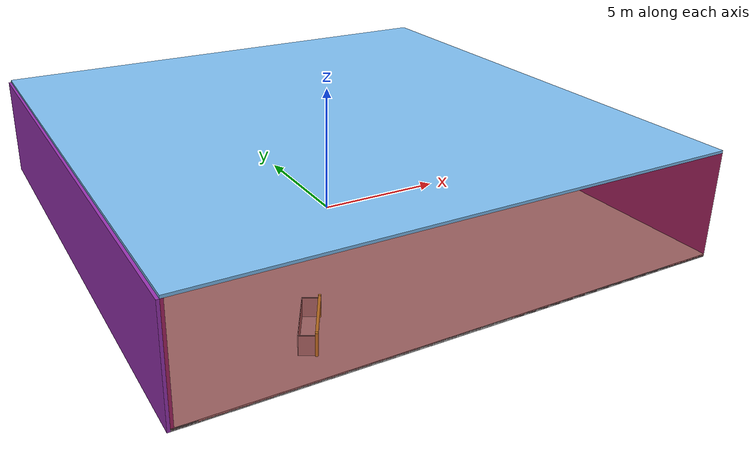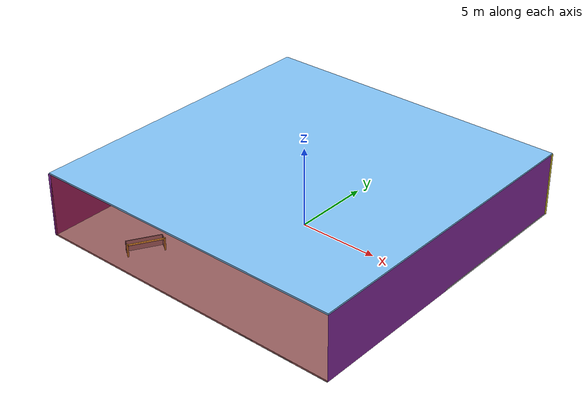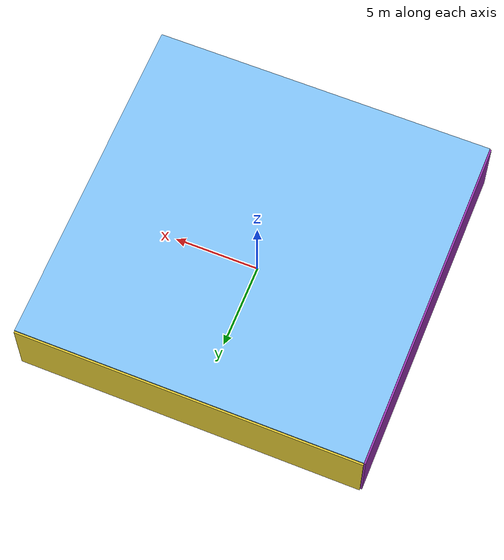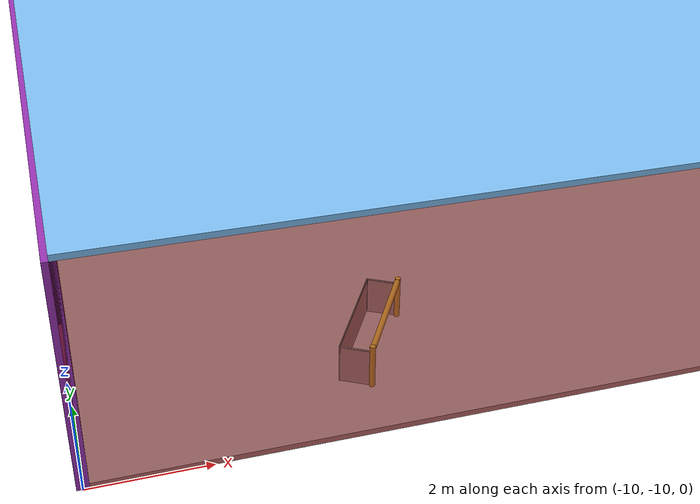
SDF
<sdf version="1.4">
 <world name="default">
  <physics type="ode">
   <max_step_size>0.001</max_step_size>
   <real_time_factor>1</real_time_factor>
   <real_time_update_rate>1000</real_time_update_rate>
   <gravity>0 0 -9.8</gravity>
  </physics>
  <scene><ambient>0.4 0.4 0.4 1</ambient><background>0.7 0.7 0.7 1</background><shadows>1</shadows></scene>
  <model name="Surrounding">
   <static>1</static>
   <link name="Ceiling">
    <collision name="Ceiling_Collision"><geometry><box><size>20 20 0.1</size></box></geometry></collision>
    <visual name="Ceiling_Visual">
     <geometry><box><size>20 20 0.1</size></box></geometry>
     <material>
      <script><uri>file://media/materials/scripts/gazebo.material</uri><name>Gazebo/SkyBlue</name></script>
     </material>
    </visual>
    <pose>0 0 4.05 0 0 0</pose>
   </link>
   <link name="Wall_South">
    <collision name="Wall_South_Collision">
     <geometry><box><size>20 0 4</size></box></geometry>
     <pose>0 0 2 0 -0 0</pose>
    </collision>
    <visual name="Wall_South_Visual">
     <pose>0 0 2 0 -0 0</pose>
     <geometry><box><size>20 0 4</size></box></geometry>
     <material>
      <script><uri>file://media/materials/scripts/gazebo.material</uri><name>Gazebo/RedTransparent</name></script>
     </material>
    </visual>
    <velocity_decay><linear>0</linear><angular>0</angular></velocity_decay>
    <pose>0 -10 0 0 -0 0</pose>
   </link>
   <link name="Wall_East">
    <collision name="Wall_21_Collision">
     <geometry><box><size>20 0 4</size></box></geometry>
     <pose>0 0 2 0 -0 0</pose>
    </collision>
    <visual name="Wall_21_Visual">
     <pose>0 0 2 0 -0 0</pose>
     <geometry><box><size>20 0 4</size></box></geometry>
     <material>
      <script><uri>file://media/materials/scripts/gazebo.material</uri><name>Gazebo/PurpleGlow</name></script>
     </material>
    </visual>
    <velocity_decay><linear>0</linear><angular>0</angular></velocity_decay>
    <pose>10 0 0 0 -0 1.5708</pose>
   </link>
   <link name="Wall_North">
    <collision name="Wall_22_Collision">
     <geometry><box><size>20 0.2 4</size></box></geometry>
     <pose>0 0 2 0 -0 0</pose>
    </collision>
    <visual name="Wall_22_Visual">
     <pose>0 0 2 0 -0 0</pose>
     <geometry><box><size>20 0.2 4</size></box></geometry>
     <material>
      <script><uri>file://media/materials/scripts/gazebo.material</uri><name>Gazebo/ZincYellow</name></script>
     </material>
    </visual>
    <velocity_decay><linear>0</linear><angular>0</angular></velocity_decay>
    <pose>0 10 0 0 -0 0</pose>
   </link>
   <link name="Wall_West">
    <collision name="Wall_23_Collision">
     <geometry><box><size>20 0.2 4</size></box></geometry>
     <pose>0 0 2 0 -0 0</pose>
    </collision>
    <visual name="Wall_23_Visual">
     <pose>0 0 2 0 -0 0</pose>
     <geometry><box><size>20 0.2 4</size></box></geometry>
     <material>
      <script><uri>file://media/materials/scripts/gazebo.material</uri><name>Gazebo/Purple</name></script>
     </material>
    </visual>
    <velocity_decay><linear>0</linear><angular>0</angular></velocity_decay>
    <pose>-10 0 0 0 0 -1.5708</pose>
   </link>
   <link name="Ground_link">
    <collision name="collision">
     <pose>0 0 .05 0 -0 0</pose>
     <geometry><box><size>20 20 0.1</size></box></geometry>
    </collision>
    <visual name="visual">
     <pose>0 0 .05 0 -0 0</pose>
     <geometry><box><size>20 20 0.1</size></box></geometry>
     <material>
      <script><uri>file://media/materials/scripts/gazebo.material</uri><name>Gazebo/LightOn</name></script>
     </material>
    </visual>
   </link>
   <static>1</static>
  </model>
  <spherical_coordinates>
   <surface_model>EARTH_WGS84</surface_model>
   <latitude_deg>0</latitude_deg>
   <longitude_deg>0</longitude_deg>
   <elevation>0</elevation>
   <heading_deg>0</heading_deg>
  </spherical_coordinates>
  <light name="lightball_0" type="diffuse">
   <diffuse>0.8 0.8 0.8 1</diffuse>
   <specular>0.2 0.2 0.2 1</specular>
   <attenuation>
    <range>100</range>
    <constant>0.7</constant>
    <linear>0.01</linear>
    <quadratic>0.001</quadratic>
   </attenuation>
   <direction>-0.5 0.1 -0.9</direction>
   <pose>1.22051505555 -8.67668088208 3.53472834885 0 0 0</pose>
  </light>
  <light name="lightball_1" type="diffuse">
   <diffuse>0.8 0.8 0.8 1</diffuse>
   <specular>0.2 0.2 0.2 1</specular>
   <attenuation>
    <range>100</range>
    <constant>0.7</constant>
    <linear>0.01</linear>
    <quadratic>0.001</quadratic>
   </attenuation>
   <direction>-0.5 0.1 -0.9</direction>
   <pose>-5.61586856457 6.56962106156 2.70346097656 0 0 0</pose>
  </light>
  <light name="lightball_2" type="diffuse">
   <diffuse>0.8 0.8 0.8 1</diffuse>
   <specular>0.2 0.2 0.2 1</specular>
   <attenuation>
    <range>100</range>
    <constant>0.7</constant>
    <linear>0.01</linear>
    <quadratic>0.001</quadratic>
   </attenuation>
   <direction>-0.5 0.1 -0.9</direction>
   <pose>-4.31896502656 -5.8122371139 3.72596495534 0 0 0</pose>
  </light>
  <light name="lightball_3" type="diffuse">
   <diffuse>0.8 0.8 0.8 1</diffuse>
   <specular>0.2 0.2 0.2 1</specular>
   <attenuation>
    <range>100</range>
    <constant>0.7</constant>
    <linear>0.01</linear>
    <quadratic>0.001</quadratic>
   </attenuation>
   <direction>-0.5 0.1 -0.9</direction>
   <pose>8.85808280715 -0.507293335868 2.46679532656 0 0 0</pose>
  </light>
  <light name="lightball_4" type="diffuse">
   <diffuse>0.8 0.8 0.8 1</diffuse>
   <specular>0.2 0.2 0.2 1</specular>
   <attenuation>
    <range>100</range>
    <constant>0.7</constant>
    <linear>0.01</linear>
    <quadratic>0.001</quadratic>
   </attenuation>
   <direction>-0.5 0.1 -0.9</direction>
   <pose>-3.87483946233 0.0970582412449 0.853635411618 0 0 0</pose>
  </light>
  <light name="lightball_5" type="diffuse">
   <diffuse>0.8 0.8 0.8 1</diffuse>
   <specular>0.2 0.2 0.2 1</specular>
   <attenuation>
    <range>100</range>
    <constant>0.7</constant>
    <linear>0.01</linear>
    <quadratic>0.001</quadratic>
   </attenuation>
   <direction>-0.5 0.1 -0.9</direction>
   <pose>-4.75257734176 -7.785250837 2.94123872927 0 0 0</pose>
  </light>
  <light name="lightball_6" type="diffuse">
   <diffuse>0.8 0.8 0.8 1</diffuse>
   <specular>0.2 0.2 0.2 1</specular>
   <attenuation>
    <range>100</range>
    <constant>0.7</constant>
    <linear>0.01</linear>
    <quadratic>0.001</quadratic>
   </attenuation>
   <direction>-0.5 0.1 -0.9</direction>
   <pose>8.13432704693 1.95959825212 1.24052671402 0 0 0</pose>
  </light>
  <light name="lightball_7" type="diffuse">
   <diffuse>0.8 0.8 0.8 1</diffuse>
   <specular>0.2 0.2 0.2 1</specular>
   <attenuation>
    <range>100</range>
    <constant>0.7</constant>
    <linear>0.01</linear>
    <quadratic>0.001</quadratic>
   </attenuation>
   <direction>-0.5 0.1 -0.9</direction>
   <pose>-0.618107646937 8.36987747046 2.56500121652 0 0 0</pose>
  </light>
  <light name="lightball_8" type="diffuse">
   <diffuse>0.8 0.8 0.8 1</diffuse>
   <specular>0.2 0.2 0.2 1</specular>
   <attenuation>
    <range>100</range>
    <constant>0.7</constant>
    <linear>0.01</linear>
    <quadratic>0.001</quadratic>
   </attenuation>
   <direction>-0.5 0.1 -0.9</direction>
   <pose>-7.05350979736 -1.74519496807 1.45345647958 0 0 0</pose>
  </light>
  <light name="lightball_9" type="diffuse">
   <diffuse>0.8 0.8 0.8 1</diffuse>
   <specular>0.2 0.2 0.2 1</specular>
   <attenuation>
    <range>100</range>
    <constant>0.7</constant>
    <linear>0.01</linear>
    <quadratic>0.001</quadratic>
   </attenuation>
   <direction>-0.5 0.1 -0.9</direction>
   <pose>1.75914572038 5.52765451997 1.22231593751 0 0 0</pose>
  </light>
  <light name="lightball_10" type="diffuse">
   <diffuse>0.8 0.8 0.8 1</diffuse>
   <specular>0.2 0.2 0.2 1</specular>
   <attenuation>
    <range>100</range>
    <constant>0.7</constant>
    <linear>0.01</linear>
    <quadratic>0.001</quadratic>
   </attenuation>
   <direction>-0.5 0.1 -0.9</direction>
   <pose>9.10323380481 -0.78213733109 2.88969827545 0 0 0</pose>
  </light>
  <include>
   <uri>model://robocup_3Dsim_goal</uri>
   <pose>-4.62571209028 -8.03263296913 0 0 0 2.61541551414</pose>
  </include>
  <include>
   <uri>model://construction_cone</uri>
   <pose>3.91924548351 7.66281416949 0 0 0 2.64167505474</pose>
  </include>
 </world>
</sdf>

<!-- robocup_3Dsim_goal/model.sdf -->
<sdf version="1.5">
  <model name="robocup_3d_goal">
    <static>true</static>
    <link name="left_post">
      <pose>0 1.05 0.45 0 0 0</pose>
      <collision name="collision">
        <geometry>
          <cylinder>
            <radius>0.05</radius>
            <length>0.9</length>
          </cylinder>
        </geometry>
      </collision>
      <visual name="visual">
        <geometry>
          <cylinder>
            <radius>0.05</radius>
            <length>0.9</length>
          </cylinder>
        </geometry>
        <material>
          <script>
            <uri>file://media/materials/scripts/gazebo.material</uri>
            <name>Gazebo/ZincYellow</name>
          </script>
        </material>
      </visual>
    </link>
    <link name="left_support_horiz_lower">
      <pose>0.30 1.05 0.01 0 0 0</pose>
      <collision name="collision">
        <geometry>
          <box>
            <size>0.50 0.02 0.02</size>
          </box>
        </geometry>
      </collision>
      <visual name="visual">
        <geometry>
          <box>
            <size>0.50 0.02 0.02</size>
          </box>
        </geometry>
        <material>
          <script>
            <uri>file://media/materials/scripts/gazebo.material</uri>
            <name>Gazebo/White</name>
          </script>
        </material>
      </visual>
    </link>
    <link name="left_support_horiz_upper">
      <pose>0.30 1.05 0.79 0 0 0</pose>
      <collision name="collision">
        <geometry>
          <box>
            <size>0.50 0.02 0.02</size>
          </box>
        </geometry>
      </collision>
      <visual name="visual">
        <geometry>
          <box>
            <size>0.50 0.02 0.02</size>
          </box>
        </geometry>
        <material>
          <script>
            <uri>file://media/materials/scripts/gazebo.material</uri>
            <name>Gazebo/White</name>
          </script>
        </material>
      </visual>
    </link>
    <link name="left_support_vertical">
      <pose>0.56 1.05 0.4 0 1.5708 0</pose>
      <collision name="collision">
        <geometry>
          <box>
            <size>0.80 0.02 0.02</size>
          </box>
        </geometry>
      </collision>
      <visual name="visual">
        <geometry>
          <box>
            <size>0.80 0.02 0.02</size>
          </box>
        </geometry>
        <material>
          <script>
            <uri>file://media/materials/scripts/gazebo.material</uri>
            <name>Gazebo/White</name>
          </script>
        </material>
      </visual>
    </link>
    <link name="right_support_horiz_lower">
      <pose>0.30 -1.05 0.01 0 0 0</pose>
      <collision name="collision">
        <geometry>
          <box>
            <size>0.50 0.02 0.02</size>
          </box>
        </geometry>
      </collision>
      <visual name="visual">
        <geometry>
          <box>
            <size>0.50 0.02 0.02</size>
          </box>
        </geometry>
        <material>
          <script>
            <uri>file://media/materials/scripts/gazebo.material</uri>
            <name>Gazebo/White</name>
          </script>
        </material>
      </visual>
    </link>
    <link name="right_support_horiz_upper">
      <pose>0.30 -1.05 0.79 0 0 0</pose>
      <collision name="collision">
        <geometry>
          <box>
            <size>0.50 0.02 0.02</size>
          </box>
        </geometry>
      </collision>
      <visual name="visual">
        <geometry>
          <box>
            <size>0.50 0.02 0.02</size>
          </box>
        </geometry>
        <material>
          <script>
            <uri>file://media/materials/scripts/gazebo.material</uri>
            <name>Gazebo/White</name>
          </script>
        </material>
      </visual>
    </link>
    <link name="right_support_vertical">
      <pose>0.56 -1.05 0.4 0 1.5708 0</pose>
      <collision name="collision">
        <geometry>
          <box>
            <size>0.80 0.02 0.02</size>
          </box>
        </geometry>
      </collision>
      <visual name="visual">
        <geometry>
          <box>
            <size>0.80 0.02 0.02</size>
          </box>
        </geometry>
        <material>
          <script>
            <uri>file://media/materials/scripts/gazebo.material</uri>
            <name>Gazebo/White</name>
          </script>
        </material>
      </visual>
    </link>
    <link name="center_support_horiz_lower">
      <pose>0.56 0 0.01 0 1.5708 0</pose>
      <collision name="collision">
        <geometry>
          <box>
            <size>0.02 2.08 0.02</size>
          </box>
        </geometry>
      </collision>
      <visual name="visual">
        <geometry>
          <box>
            <size>0.02 2.08 0.02</size>
          </box>
        </geometry>
        <material>
          <script>
            <uri>file://media/materials/scripts/gazebo.material</uri>
            <name>Gazebo/White</name>
          </script>
        </material>
      </visual>
    </link>
    <link name="center_support_horiz_upper">
      <pose>0.56 0 0.79 0 1.5708 0</pose>
      <collision name="collision">
        <geometry>
          <box>
            <size>0.02 2.08 0.02</size>
          </box>
        </geometry>
      </collision>
      <visual name="visual">
        <geometry>
          <box>
            <size>0.02 2.08 0.02</size>
          </box>
        </geometry>
        <material>
          <script>
            <uri>file://media/materials/scripts/gazebo.material</uri>
            <name>Gazebo/White</name>
          </script>
        </material>
      </visual>
    </link>
    <link name="right_post">
      <pose>0 -1.05 0.45 0 0 0</pose>
      <collision name="collision">
        <geometry>
          <cylinder>
            <radius>0.05</radius>
            <length>0.9</length>
          </cylinder>
        </geometry>
      </collision>
      <visual name="visual">
        <geometry>
          <cylinder>
            <radius>0.05</radius>
            <length>0.9</length>
          </cylinder>
        </geometry>
        <material>
          <script>
            <uri>file://media/materials/scripts/gazebo.material</uri>
            <name>Gazebo/ZincYellow</name>
          </script>
        </material>
      </visual>
    </link>
    <link name="crossbar">
      <pose>0 0 0.85 1.57 1.57 0</pose>
      <collision name="collision">
        <geometry>
          <cylinder>
            <radius>0.05</radius>
            <length>2.0</length>
          </cylinder>
        </geometry>
      </collision>
      <visual name="visual">
        <geometry>
          <cylinder>
            <radius>0.05</radius>
            <length>2.0</length>
          </cylinder>
        </geometry>
        <material>
          <script>
            <uri>file://media/materials/scripts/gazebo.material</uri>
            <name>Gazebo/ZincYellow</name>
          </script>
        </material>
      </visual>
    </link>
    <link name="center_net">
      <pose>0.56 0 0.40 0 0 0</pose>
      <collision name="collision">
        <geometry>
          <box>
            <size>0.01 2.1 0.80</size>
          </box>
        </geometry>
      </collision>
      <visual name="visual">
        <geometry>
          <box>
            <size>0.01 2.1 0.80</size>
          </box>
        </geometry>
        <material>
          <script>
            <uri>model://../model_source/models/robocup09_spl_field/materials/scripts/</uri>
            <uri>model://../model_source/models/robocup09_spl_field/materials/textures/</uri>
            <name>RoboCup/Net</name>
          </script>
        </material>
      </visual>
    </link>
    <link name="left_net">
      <pose>0.30 1.05 0.40 0 0 0</pose>
      <collision name="collision">
        <geometry>
          <box>
            <size>0.50 0.01 0.76</size>
          </box>
        </geometry>
      </collision>
      <visual name="visual">
        <geometry>
          <box>
            <size>0.50 0.01 0.76</size>
          </box>
        </geometry>
        <material>
          <script>
            <uri>model://../model_source/models/robocup09_spl_field/materials/scripts/</uri>
            <uri>model://../model_source/models/robocup09_spl_field/materials/textures/</uri>
            <name>RoboCup/Net</name>
          </script>
        </material>
      </visual>
    </link>
    <link name="right_net">
      <pose>0.30 -1.05 0.40 0 0 0</pose>
      <collision name="collision">
        <geometry>
          <box>
            <size>0.50 0.01 0.76</size>
          </box>
        </geometry>
      </collision>
      <visual name="visual">
        <geometry>
          <box>
            <size>0.50 0.01 0.76</size>
          </box>
        </geometry>
        <material>
          <script>
            <uri>model://../model_source/models/robocup09_spl_field/materials/scripts/</uri>
            <uri>model://../model_source/models/robocup09_spl_field/materials/textures/</uri>
            <name>RoboCup/Net</name>
          </script>
        </material>
      </visual>
    </link>
  </model>
</sdf>

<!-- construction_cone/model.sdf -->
<sdf version="1.5">
  <model name="Construction Cone">
    <link name="link">
      <collision name="collision">
        <geometry>
          <mesh>
            <scale>10 10 10</scale>
            <uri>file://isr-testbed/construction_cone/meshes/construction_cone.dae</uri>
          </mesh>
        </geometry>
      </collision>
      <visual name="visual">
        <geometry>
          <mesh>
            <scale>10 10 10</scale>
            <uri>file://isr-testbed/construction_cone/meshes/construction_cone.dae</uri>
          </mesh>
        </geometry>
      </visual>
    </link>
  </model>
</sdf>
